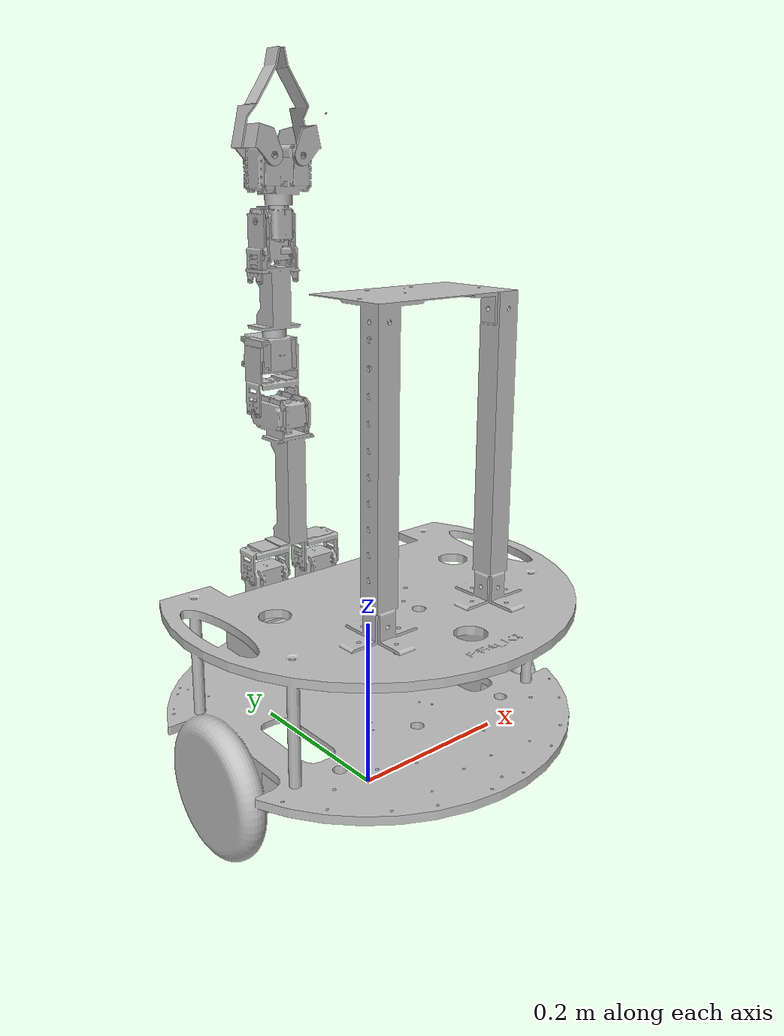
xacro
<?xml version="1.0"?>
<robot name="armstrong" xmlns:xacro="http://www.ros.org/wiki/xacro">

	<!--Xacro Properties-->
	<xacro:property name="deg_to_rad" value="0.01745329251994329577"/>
	<xacro:property name="M_PI" value="3.14159"/>

	<!--http://wiki.ros.org/urdf/XML/Transmission-->
	<xacro:macro name="transmission_block" params="joint_name">
		<transmission name="tran1">
			<type>transmission_interface/SimpleTransmission</type>
			<joint name="${joint_name}">
				<hardwareInterface>hardware_interface/PositionJointInterface</hardwareInterface>
			</joint>
			<actuator name="motor1">
				<hardwareInterface>hardware_interface/PositionJointInterface</hardwareInterface>
				<mechanicalReduction>1</mechanicalReduction>
			</actuator>
		</transmission>
	</xacro:macro>

  <!--ARLO Link Base Frame-->
  <link
    name="base_link">
    <inertial>
      <origin
        xyz="-4.5737E-08 -0.020825 0.15228"
        rpy="0 0 0" />
      <mass
        value="3.7701" />
      <inertia
        ixx="0.040053"
        ixy="2.563E-08"
        ixz="-5.9908E-08"
        iyy="0.08344"
        iyz="0.011411"
        izz="0.052771" />
    </inertial>
    <visual>
      <origin
        xyz="0 0 0"
        rpy="0 0 0" />
      <geometry>
        <mesh
          filename="package://mastering_ros_robot/meshes/armstrong_meshes/base_link.STL" />
      </geometry>
      <material
        name="">
        <color
          rgba="0.752941176470588 0.752941176470588 0.752941176470588 1" />
      </material>
    </visual>
    <collision>
      <origin
        xyz="0 0 0"
        rpy="0 0 0" />
      <geometry>
        <mesh
          filename="package://mastering_ros_robot/meshes/armstrong_meshes/base_link.STL" />
      </geometry>
    </collision>
  </link>

  <!--Link 1 Spin Table-->
  <link
    name="Link_1">
    <inertial>
      <origin
        xyz="-0.000295599531515089 -0.0050694041200408 0.0262904206780893"
        rpy="0 0 0" />
      <mass
        value="0.231017580172464" />
      <inertia
        ixx="1.39224819737156E-05"
        ixy="3.16966178167247E-07"
        ixz="1.52017921099788E-07"
        iyy="2.61244195879679E-06"
        iyz="-5.42858579794049E-06"
        izz="1.1327792166679E-05" />
    </inertial>
    <visual>
      <origin
        xyz="0 0 0"
        rpy="0 0 0" />
      <geometry>
        <mesh
          filename="package://mastering_ros_robot/meshes/armstrong_meshes/Link_1.STL" />
      </geometry>
      <material
        name="">
        <color
          rgba="0.752941176470588 0.752941176470588 0.752941176470588 1" />
      </material>
    </visual>
    <collision>
      <origin
        xyz="0 0 0"
        rpy="0 0 0" />
      <geometry>
        <mesh
          filename="package://mastering_ros_robot/meshes/armstrong_meshes/Link_1.STL" />
      </geometry>
    </collision>
  </link>
  <joint
    name="Joint_0"
    type="fixed">
    <origin
      xyz="0 0.147389590761843 0.111124999999998"
      rpy="0 6.98296267768627E-15 6.98296267768627E-15" />
    <parent
      link="base_link" />
    <child
      link="Link_1" />
    <axis
      xyz="0 0 0" />
  </joint>

  <!--Link 2 Dual Motors-->
  <link
    name="Link_2">
    <inertial>
      <origin
        xyz="0.000245997952605159 5.18900594968785E-06 0.0337679913335289"
        rpy="0 0 0" />
      <mass
        value="0.266262084814045" />
      <inertia
        ixx="0.000104593288743262"
        ixy="2.13438344279435E-08"
        ixz="-1.18288811562897E-06"
        iyy="0.00032148615989113"
        iyz="1.76046645274627E-08"
        izz="0.000216893011548678" />
    </inertial>
    <visual>
      <origin
        xyz="0 0 0"
        rpy="0 0 0" />
      <geometry>
        <mesh
          filename="package://mastering_ros_robot/meshes/armstrong_meshes/Link_2.STL" />
      </geometry>
      <material
        name="">
        <color
          rgba="0.752941176470588 0.752941176470588 0.752941176470588 1" />
      </material>
    </visual>
    <collision>
      <origin
        xyz="0 0 0"
        rpy="0 0 0" />
      <geometry>
        <mesh
          filename="package://mastering_ros_robot/meshes/armstrong_meshes/Link_2.STL" />
      </geometry>
    </collision>
  </link>
  <joint
    name="Joint_1"
    type="revolute">
    <origin
      xyz="0 0 0.04318"
      rpy="6.98296267768627E-15 0 -6.98296267768627E-15" />
    <parent
      link="Link_1" />
    <child
      link="Link_2" />
    <axis
      xyz="0 0 1" />
    <limit lower="-1.5708" upper="1.5708" effort="24" velocity="6.07"/>
  </joint>

  <!--Link 3 Sturdy Base Servo-->
  <link
    name="Link_3">
    <inertial>
      <origin
        xyz="0.000201293827647442 0.00441389267870827 0.12675435695043"
        rpy="0 0 0" />
      <mass
        value="0.205570387117977" />
      <inertia
        ixx="0.000945810281839495"
        ixy="-3.75279192756167E-07"
        ixz="-2.68829797915708E-06"
        iyy="0.000980318331283739"
        iyz="-8.22410693097532E-05"
        izz="6.07849054159079E-05" />
    </inertial>
    <visual>
      <origin
        xyz="0 0 0"
        rpy="0 0 0" />
      <geometry>
        <mesh
          filename="package://mastering_ros_robot/meshes/armstrong_meshes/Link_3.STL" />
      </geometry>
      <material
        name="">
        <color
          rgba="0.752941176470588 0.752941176470588 0.752941176470588 1" />
      </material>
    </visual>
    <collision>
      <origin
        xyz="0 0 0"
        rpy="0 0 0" />
      <geometry>
        <mesh
          filename="package://mastering_ros_robot/meshes/armstrong_meshes/Link_3.STL" />
      </geometry>
    </collision>
  </link>
  <joint
    name="Joint_2"
    type="revolute">
    <origin
      xyz="0 0 0.0670364002434545"
      rpy="1.33861536954324E-12 -6.98885806120157E-09 -1.31861661004669E-12" />
    <parent
      link="Link_2" />
    <child
      link="Link_3" />
    <axis
      xyz="1 0 0" />
    <limit lower="-1.91288086" upper="1.91288086" effort="48" velocity="6.07"/>
  </joint>

  <!--Link 4 First Wrist Rotate-->
  <link
    name="Link_4">
    <inertial>
      <origin
        xyz="-8.22270928568791E-08 0.00358599191437327 0.0626435730095933"
        rpy="0 0 0" />
      <mass
        value="0.145524620366664" />
      <inertia
        ixx="4.93098686773543E-05"
        ixy="5.89377990972886E-11"
        ixz="5.91336907921079E-11"
        iyy="6.58934003599806E-05"
        iyz="9.43389639479683E-08"
        izz="2.46228458803864E-05" />
    </inertial>
    <visual>
      <origin
        xyz="0 0 0"
        rpy="0 0 0" />
      <geometry>
        <mesh
          filename="package://mastering_ros_robot/meshes/armstrong_meshes/Link_4.STL" />
      </geometry>
      <material
        name="">
        <color
          rgba="0.752941176470588 0.752941176470588 0.752941176470588 1" />
      </material>
    </visual>
    <collision>
      <origin
        xyz="0 0 0"
        rpy="0 0 0" />
      <geometry>
        <mesh
          filename="package://mastering_ros_robot/meshes/armstrong_meshes/Link_4.STL" />
      </geometry>
    </collision>
  </link>
  <joint
    name="Joint_3"
    type="revolute">
    <origin
      xyz="1.79999894009408E-05 0.0292119999936017 0.1917240000158"
      rpy="3.32428011080213E-15 3.61394601646668E-15 -1.39659020047236E-14" />
    <parent
      link="Link_3" />
    <child
      link="Link_4" />
    <axis
      xyz="1 0 0" />
    <limit lower="-2.7227136" upper="0.356047" effort="24" velocity="6.07"/>
  </joint>

  <!--Link 5 Reach Girder-->
  <link
    name="Link_5">
    <inertial>
      <origin
        xyz="0.000429978732766456 -7.0232266652509E-06 0.0337099670163837"
        rpy="0 0 0" />
      <mass
        value="0.0812905905488399" />
      <inertia
        ixx="9.39737633066184E-06"
        ixy="-1.04591568016406E-10"
        ixz="-5.44323642033752E-08"
        iyy="9.3976569237048E-06"
        iyz="-1.8056954003407E-08"
        izz="3.4998577136393E-10" />
    </inertial>
    <visual>
      <origin
        xyz="0 0 0"
        rpy="0 0 0" />
      <geometry>
        <mesh
          filename="package://mastering_ros_robot/meshes/armstrong_meshes/Link_5.STL" />
      </geometry>
      <material
        name="">
        <color
          rgba="0.752941176470588 0.752941176470588 0.752941176470588 1" />
      </material>
    </visual>
    <collision>
      <origin
        xyz="0 0 0"
        rpy="0 0 0" />
      <geometry>
        <mesh
          filename="package://mastering_ros_robot/meshes/armstrong_meshes/Link_5.STL" />
      </geometry>
    </collision>
  </link>
  <joint
    name="Joint_4"
    type="revolute">
    <origin
      xyz="0 -0.00669799998980004 0.1003601999984"
      rpy="-1.95701482895409E-16 -6.96589563095315E-15 2.30673060684073E-08" />
    <parent
      link="Link_4" />
    <child
      link="Link_5" />
    <axis
      xyz="0 0 1" />
    <limit lower="-3.14159265" upper="3.14159265" effort="24" velocity="6.07"/>
  </joint>

  <!--Link 6 Second Wrist Rotate-->
  <link
    name="Link_6">
    <inertial>
      <origin
        xyz="-3.38120155041199E-07 -0.00151253089666441 0.0532875061187637"
        rpy="0 0 0" />
      <mass
        value="0.0927319563288835" />
      <inertia
        ixx="2.20187618318443E-05"
        ixy="-1.79450945670291E-11"
        ixz="2.90513976464271E-10"
        iyy="3.01646889575727E-05"
        iyz="2.43983145821587E-06"
        izz="1.00074692806394E-05" />
    </inertial>
    <visual>
      <origin
        xyz="0 0 0"
        rpy="0 0 0" />
      <geometry>
        <mesh
          filename="package://mastering_ros_robot/meshes/armstrong_meshes/Link_6.STL" />
      </geometry>
      <material
        name="">
        <color
          rgba="0.752941176470588 0.752941176470588 0.752941176470588 1" />
      </material>
    </visual>
    <collision>
      <origin
        xyz="0 0 0"
        rpy="0 0 0" />
      <geometry>
        <mesh
          filename="package://mastering_ros_robot/meshes/armstrong_meshes/Link_6.STL" />
      </geometry>
    </collision>
  </link>
  <joint
    name="Joint_5"
    type="revolute">
    <origin
      xyz="0 0 0.0526599999884"
      rpy="4.9973748652526E-07 -6.98884415650133E-09 -1.74585298068004E-14" />
    <parent
      link="Link_5" />
    <child
      link="Link_6" />
    <axis
      xyz="1 0 0" />
    <limit lower="-1.91288086" upper="1.91288086" effort="24" velocity="6.07"/>
  </joint>

  <!--Link 7 Grippers-->
  <link
    name="Link_7">
    <inertial>
      <origin
        xyz="-2.23067071783989E-05 -0.00133789741905997 0.0220242310868904"
        rpy="0 0 0" />
      <mass
        value="0.123680974496004" />
      <inertia
        ixx="2.45041167636038E-05"
        ixy="2.21546568984653E-09"
        ixz="1.63355680293107E-08"
        iyy="5.29618388373048E-05"
        iyz="2.58579745481831E-06"
        izz="3.26866508599107E-05" />
    </inertial>
    <visual>
      <origin
        xyz="0 0 0"
        rpy="0 0 0" />
      <geometry>
        <mesh
          filename="package://mastering_ros_robot/meshes/armstrong_meshes/Link_7.STL" />
      </geometry>
      <material
        name="">
        <color
          rgba="0.752941176470588 0.752941176470588 0.752941176470588 1" />
      </material>
    </visual>
    <collision>
      <origin
        xyz="0 0 0"
        rpy="0 0 0" />
      <geometry>
        <mesh
          filename="package://mastering_ros_robot/meshes/armstrong_meshes/Link_7.STL" />
      </geometry>
    </collision>
  </link>
  <joint
    name="Joint_6"
    type="revolute">
    <origin
      xyz="0 -0.0147499999999997 0.0936450000090002"
      rpy="-1.05298985515949E-14 6.98045622575094E-15 6.98297180950059E-15" />
    <parent
      link="Link_6" />
    <child
      link="Link_7" />
    <axis
      xyz="0 0 1" />
    <limit lower="-2.617993878" upper="2.617993878" effort="10" velocity="6.07"/>
  </joint>

  <!--Link 8 Left Gripper-->
  <link
    name="Link_8">
    <inertial>
      <origin
        xyz="0.0143 -0.023862 0.023722"
        rpy="0 0 0" />
      <mass
        value="0.027053" />
      <inertia
        ixx="2.7531E-05"
        ixy="-3.0411E-07"
        ixz="-2.9977E-07"
        iyy="2.9398E-06"
        iyz="7.1644E-06"
        izz="2.5394E-05" />
    </inertial>
    <visual>
      <origin
        xyz="0 0 0"
        rpy="0 0 0" />
      <geometry>
        <mesh
          filename="package://mastering_ros_robot/meshes/armstrong_meshes/Link_8.STL" />
      </geometry>
      <material
        name="">
        <color
          rgba="0.752941176470588 0.752941176470588 0.752941176470588 1" />
      </material>
    </visual>
    <collision>
      <origin
        xyz="0 0 0"
        rpy="0 0 0" />
      <geometry>
        <mesh
          filename="package://mastering_ros_robot/meshes/armstrong_meshes/Link_8.STL" />
      </geometry>
    </collision>
  </link>
  <joint
    name="Joint_7"
    type="revolute">
    <origin
      xyz="0.0186360000084238 -0.000852000011599963 0.0411360000095722"
      rpy="-1.17373567259265E-16 1.39776721927775E-08 -1.25987633750737E-16" />
    <parent
      link="Link_7" />
    <child
      link="Link_8" />
    <axis
      xyz="0 1 0" />
    <limit lower="0" upper="0.40" effort="10" velocity="6.07"/>
  </joint>

  <!--Link 9 Right Gripper-->
  <link
    name="Link_9">
    <inertial>
      <origin
        xyz="-0.014201 -0.024279 0.023724"
        rpy="0 0 0" />
      <mass
        value="0.027053" />
      <inertia
        ixx="2.7501E-05"
        ixy="3.9722E-07"
        ixz="2.7586E-07"
        iyy="2.935E-06"
        iyz="7.1406E-06"
        izz="2.5379E-05" />
    </inertial>
    <visual>
      <origin
        xyz="0 0 0"
        rpy="0 0 0" />
      <geometry>
        <mesh
          filename="package://mastering_ros_robot/meshes/armstrong_meshes/Link_9.STL" />
      </geometry>
      <material
        name="">
        <color
          rgba="0.752941176470588 0.752941176470588 0.752941176470588 1" />
      </material>
    </visual>
    <collision>
      <origin
        xyz="0 0 0"
        rpy="0 0 0" />
      <geometry>
        <mesh
          filename="package://mastering_ros_robot/meshes/armstrong_meshes/Link_9.STL" />
      </geometry>
    </collision>
  </link>
  <joint
    name="Joint_8"
    type="revolute">
    <origin
      xyz="-0.018636 -0.000426000011599953 0.0411359999999997"
      rpy="-1.29121702479446E-16 1.39776998144446E-08 -1.24326241119813E-16" />
    <parent
      link="Link_7" />
    <child
      link="Link_9" />
    <axis
      xyz="0 1 0" />
    <limit lower="-0.40" upper="0" effort="10" velocity="6.07"/>
    <mimic joint="Joint_7" multiplier="-1"/>
  </joint>

  <!--EEF Reference Frame-->
  <link name="Link_EEF">
  	<visual>
  		<geometry>
  			<sphere radius="0.001"/>
  		</geometry>

  		<material name="">
  			<color rgba="0.75294 0.75294 0.75294 1" />
  		</material>
  	</visual>
  </link>
  <joint
    name="Joint_EEF"
    type="fixed">
    <origin
      xyz="-2.40325633111271E-05 -0.0883617330439031 0.0805346693789171"
      rpy="-4.99738824883467E-07 1.39776870622754E-08 -2.30659633733869E-08" />
    <parent
      link="Link_7" />
    <child
      link="Link_EEF" />
    <axis
      xyz="0 0 0" />
  </joint>

  <!--Transmissions ROS Control-->
  <xacro:transmission_block joint_name="Joint_1"/>
  <xacro:transmission_block joint_name="Joint_2"/>
  <xacro:transmission_block joint_name="Joint_3"/>
  <xacro:transmission_block joint_name="Joint_4"/>
  <xacro:transmission_block joint_name="Joint_5"/>
  <xacro:transmission_block joint_name="Joint_6"/>
  <xacro:transmission_block joint_name="Joint_7"/>
  <xacro:transmission_block joint_name="Joint_8"/>

  <!--Gazebo_ROS_Control Plugin-->
  <gazebo>
      <plugin name="gazebo_ros_control" filename="libgazebo_ros_control.so">
        <robotNamespace>/armstrong</robotNamespace>
      </plugin>
  </gazebo>

</robot>
